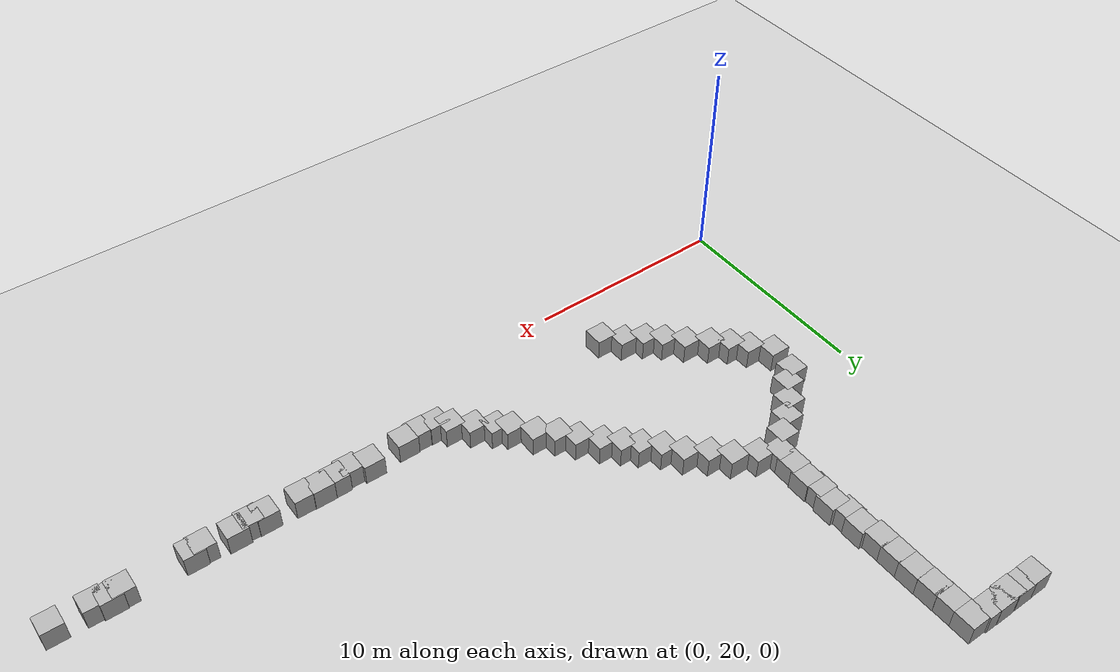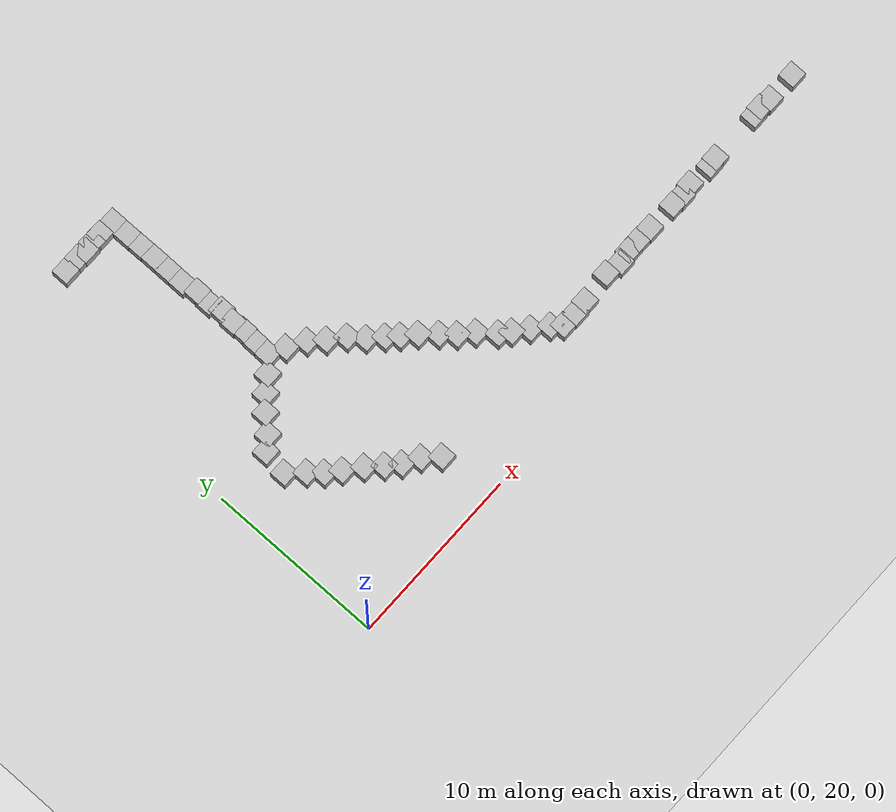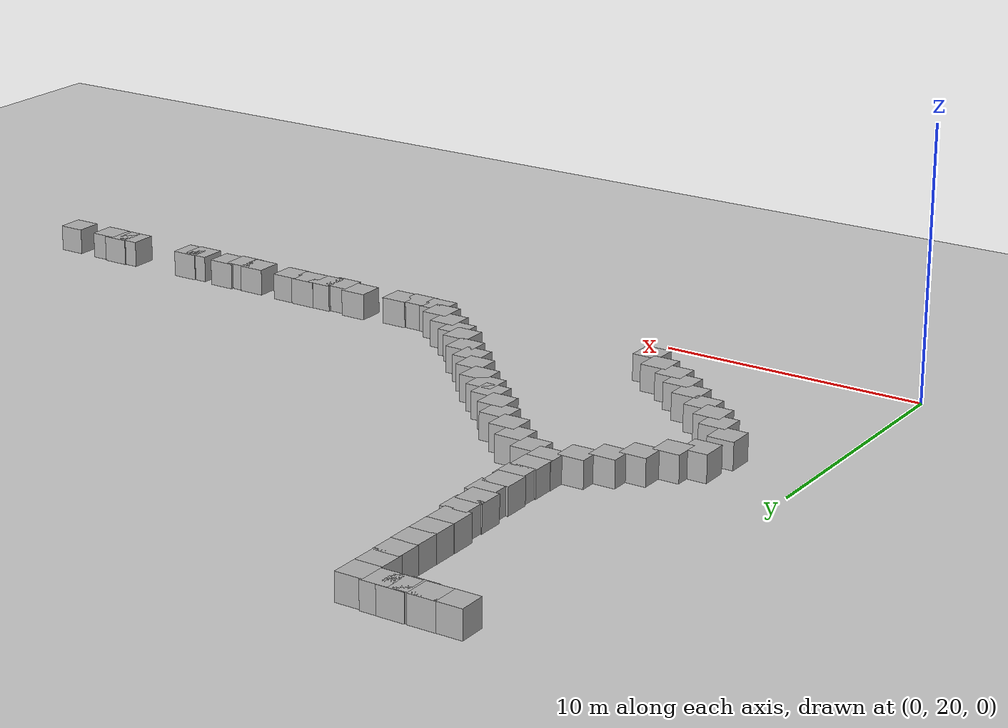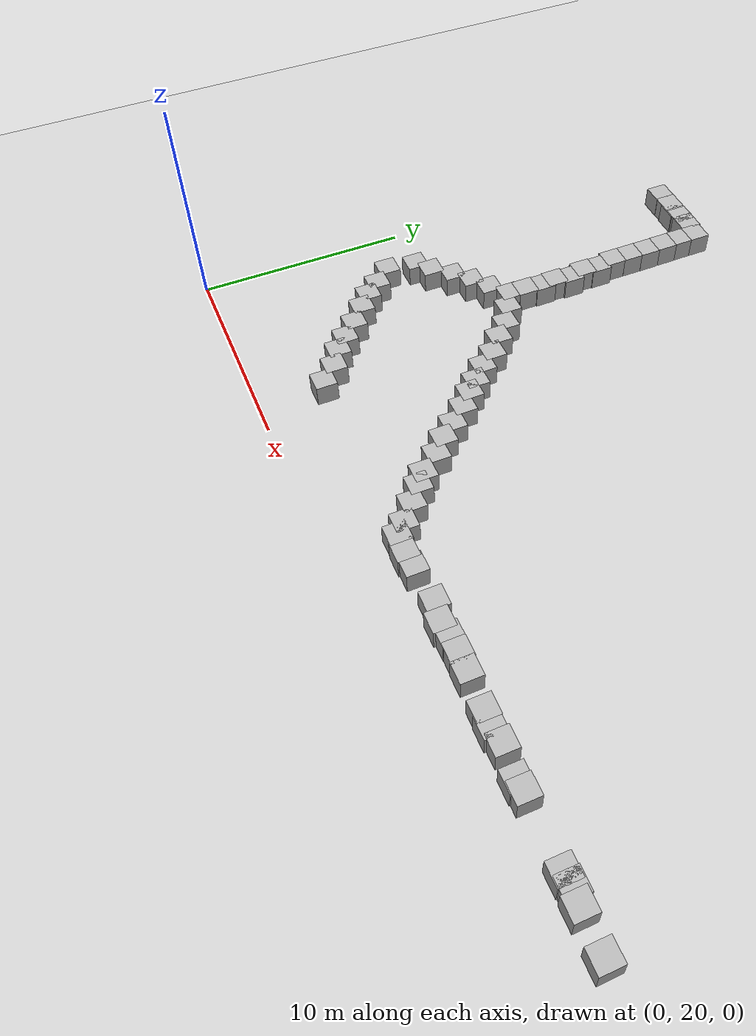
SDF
<sdf version="1.10">
 <world name="empty">
  <model name="ground_plane">
   <static>true</static>
   <link name="link">
    <collision name="collision">
     <geometry><plane><normal>0 0 1</normal><size>100 100</size></plane></geometry>
    </collision>
    <visual name="visual">
     <geometry><plane><normal>0 0 1</normal><size>100 100</size></plane></geometry>
     <material>
      <ambient>0.800000012 0.800000012 0.800000012 1</ambient>
      <diffuse>0.800000012 0.800000012 0.800000012 1</diffuse>
      <specular>0.800000012 0.800000012 0.800000012 1</specular>
     </material>
    </visual>
    <inertial>
     <mass>1</mass>
     <inertia><ixx>1</ixx><ixy>0</ixy><ixz>0</ixz><iyy>1</iyy><iyz>0</iyz><izz>1</izz></inertia>
    </inertial>
   </link>
  </model>
  <model name="box_7_102">
   <pose>6.9818220370863573 37.199644712680268 0.5 0 0 0</pose>
   <link name="box_link">
    <inertial>
     <inertia><ixx>0.16666</ixx><ixy>0</ixy><ixz>0</ixz><iyy>0.16666</iyy><iyz>0</iyz><izz>0.16666</izz></inertia>
     <mass>1</mass>
    </inertial>
    <collision name="box_collision"><geometry><box><size>1 1 1</size></box></geometry></collision>
    <visual name="box_visual">
     <geometry><box><size>1 1 1</size></box></geometry>
     <material>
      <ambient>0.300000012 0.300000012 0.300000012 1</ambient>
      <diffuse>0.699999988 0.699999988 0.699999988 1</diffuse>
      <specular>1 1 1 1</specular>
     </material>
    </visual>
   </link>
   <static>false</static>
  </model>
  <model name="box_7_103">
   <pose>7.0258562224809955 37.982386670514707 0.5 0 0 0</pose>
   <link name="box_link">
    <inertial>
     <inertia><ixx>0.16666</ixx><ixy>0</ixy><ixz>0</ixz><iyy>0.16666</iyy><iyz>0</iyz><izz>0.16666</izz></inertia>
     <mass>1</mass>
    </inertial>
    <collision name="box_collision"><geometry><box><size>1 1 1</size></box></geometry></collision>
    <visual name="box_visual">
     <geometry><box><size>1 1 1</size></box></geometry>
     <material>
      <ambient>0.300000012 0.300000012 0.300000012 1</ambient>
      <diffuse>0.699999988 0.699999988 0.699999988 1</diffuse>
      <specular>1 1 1 1</specular>
     </material>
    </visual>
   </link>
   <static>false</static>
  </model>
  <model name="box_7_104">
   <pose>6.8653520473228999 38.897348743136661 0.5 0 0 0</pose>
   <link name="box_link">
    <inertial>
     <inertia><ixx>0.16666</ixx><ixy>0</ixy><ixz>0</ixz><iyy>0.16666</iyy><iyz>0</iyz><izz>0.16666</izz></inertia>
     <mass>1</mass>
    </inertial>
    <collision name="box_collision"><geometry><box><size>1 1 1</size></box></geometry></collision>
    <visual name="box_visual">
     <geometry><box><size>1 1 1</size></box></geometry>
     <material>
      <ambient>0.300000012 0.300000012 0.300000012 1</ambient>
      <diffuse>0.699999988 0.699999988 0.699999988 1</diffuse>
      <specular>1 1 1 1</specular>
     </material>
    </visual>
   </link>
   <static>false</static>
  </model>
  <model name="box_7_105">
   <pose>6.86935141346226 39.82627662145569 0.5 0 0 0</pose>
   <link name="box_link">
    <inertial>
     <inertia><ixx>0.16666</ixx><ixy>0</ixy><ixz>0</ixz><iyy>0.16666</iyy><iyz>0</iyz><izz>0.16666</izz></inertia>
     <mass>1</mass>
    </inertial>
    <collision name="box_collision"><geometry><box><size>1 1 1</size></box></geometry></collision>
    <visual name="box_visual">
     <geometry><box><size>1 1 1</size></box></geometry>
     <material>
      <ambient>0.300000012 0.300000012 0.300000012 1</ambient>
      <diffuse>0.699999988 0.699999988 0.699999988 1</diffuse>
      <specular>1 1 1 1</specular>
     </material>
    </visual>
   </link>
   <static>false</static>
  </model>
  <model name="box_7_106">
   <pose>6.8737772864032767 40.789411978564651 0.5 0 0 0</pose>
   <link name="box_link">
    <inertial>
     <inertia><ixx>0.16666</ixx><ixy>0</ixy><ixz>0</ixz><iyy>0.16666</iyy><iyz>0</iyz><izz>0.16666</izz></inertia>
     <mass>1</mass>
    </inertial>
    <collision name="box_collision"><geometry><box><size>1 1 1</size></box></geometry></collision>
    <visual name="box_visual">
     <geometry><box><size>1 1 1</size></box></geometry>
     <material>
      <ambient>0.300000012 0.300000012 0.300000012 1</ambient>
      <diffuse>0.699999988 0.699999988 0.699999988 1</diffuse>
      <specular>1 1 1 1</specular>
     </material>
    </visual>
   </link>
   <static>false</static>
  </model>
  <model name="box_7_107">
   <pose>6.8592821568740963 41.770575013761601 0.5 0 0 0</pose>
   <link name="box_link">
    <inertial>
     <inertia><ixx>0.16666</ixx><ixy>0</ixy><ixz>0</ixz><iyy>0.16666</iyy><iyz>0</iyz><izz>0.16666</izz></inertia>
     <mass>1</mass>
    </inertial>
    <collision name="box_collision"><geometry><box><size>1 1 1</size></box></geometry></collision>
    <visual name="box_visual">
     <geometry><box><size>1 1 1</size></box></geometry>
     <material>
      <ambient>0.300000012 0.300000012 0.300000012 1</ambient>
      <diffuse>0.699999988 0.699999988 0.699999988 1</diffuse>
      <specular>1 1 1 1</specular>
     </material>
    </visual>
   </link>
   <static>false</static>
  </model>
  <model name="box_7_108">
   <pose>6.8459215419698474 42.642100578142269 0.5 0 0 0</pose>
   <link name="box_link">
    <inertial>
     <inertia><ixx>0.16666</ixx><ixy>0</ixy><ixz>0</ixz><iyy>0.16666</iyy><iyz>0</iyz><izz>0.16666</izz></inertia>
     <mass>1</mass>
    </inertial>
    <collision name="box_collision"><geometry><box><size>1 1 1</size></box></geometry></collision>
    <visual name="box_visual">
     <geometry><box><size>1 1 1</size></box></geometry>
     <material>
      <ambient>0.300000012 0.300000012 0.300000012 1</ambient>
      <diffuse>0.699999988 0.699999988 0.699999988 1</diffuse>
      <specular>1 1 1 1</specular>
     </material>
    </visual>
   </link>
   <static>false</static>
  </model>
  <model name="box_7_109">
   <pose>6.8482749237361107 43.633571200421294 0.5 0 0 0</pose>
   <link name="box_link">
    <inertial>
     <inertia><ixx>0.16666</ixx><ixy>0</ixy><ixz>0</ixz><iyy>0.16666</iyy><iyz>0</iyz><izz>0.16666</izz></inertia>
     <mass>1</mass>
    </inertial>
    <collision name="box_collision"><geometry><box><size>1 1 1</size></box></geometry></collision>
    <visual name="box_visual">
     <geometry><box><size>1 1 1</size></box></geometry>
     <material>
      <ambient>0.300000012 0.300000012 0.300000012 1</ambient>
      <diffuse>0.699999988 0.699999988 0.699999988 1</diffuse>
      <specular>1 1 1 1</specular>
     </material>
    </visual>
   </link>
   <static>false</static>
  </model>
  <model name="box_7_110">
   <pose>5.9314653542560443 43.694338676873521 0.5 0 0 0</pose>
   <link name="box_link">
    <inertial>
     <inertia><ixx>0.16666</ixx><ixy>0</ixy><ixz>0</ixz><iyy>0.16666</iyy><iyz>0</iyz><izz>0.16666</izz></inertia>
     <mass>1</mass>
    </inertial>
    <collision name="box_collision"><geometry><box><size>1 1 1</size></box></geometry></collision>
    <visual name="box_visual">
     <geometry><box><size>1 1 1</size></box></geometry>
     <material>
      <ambient>0.300000012 0.300000012 0.300000012 1</ambient>
      <diffuse>0.699999988 0.699999988 0.699999988 1</diffuse>
      <specular>1 1 1 1</specular>
     </material>
    </visual>
   </link>
   <static>false</static>
  </model>
  <model name="box_7_111">
   <pose>5.3382625848367748 43.703671115389561 0.5 0 0 0</pose>
   <link name="box_link">
    <inertial>
     <inertia><ixx>0.16666</ixx><ixy>0</ixy><ixz>0</ixz><iyy>0.16666</iyy><iyz>0</iyz><izz>0.16666</izz></inertia>
     <mass>1</mass>
    </inertial>
    <collision name="box_collision"><geometry><box><size>1 1 1</size></box></geometry></collision>
    <visual name="box_visual">
     <geometry><box><size>1 1 1</size></box></geometry>
     <material>
      <ambient>0.300000012 0.300000012 0.300000012 1</ambient>
      <diffuse>0.699999988 0.699999988 0.699999988 1</diffuse>
      <specular>1 1 1 1</specular>
     </material>
    </visual>
   </link>
   <static>false</static>
  </model>
  <model name="box_7_112">
   <pose>4.8001484517173534 43.658350162474797 0.5 0 0 0</pose>
   <link name="box_link">
    <inertial>
     <inertia><ixx>0.16666</ixx><ixy>0</ixy><ixz>0</ixz><iyy>0.16666</iyy><iyz>0</iyz><izz>0.16666</izz></inertia>
     <mass>1</mass>
    </inertial>
    <collision name="box_collision"><geometry><box><size>1 1 1</size></box></geometry></collision>
    <visual name="box_visual">
     <geometry><box><size>1 1 1</size></box></geometry>
     <material>
      <ambient>0.300000012 0.300000012 0.300000012 1</ambient>
      <diffuse>0.699999988 0.699999988 0.699999988 1</diffuse>
      <specular>1 1 1 1</specular>
     </material>
    </visual>
   </link>
   <static>false</static>
  </model>
  <model name="box_7_113">
   <pose>4.2617829197288817 43.693388386121555 0.5 0 0 0</pose>
   <link name="box_link">
    <inertial>
     <inertia><ixx>0.16666</ixx><ixy>0</ixy><ixz>0</ixz><iyy>0.16666</iyy><iyz>0</iyz><izz>0.16666</izz></inertia>
     <mass>1</mass>
    </inertial>
    <collision name="box_collision"><geometry><box><size>1 1 1</size></box></geometry></collision>
    <visual name="box_visual">
     <geometry><box><size>1 1 1</size></box></geometry>
     <material>
      <ambient>0.300000012 0.300000012 0.300000012 1</ambient>
      <diffuse>0.699999988 0.699999988 0.699999988 1</diffuse>
      <specular>1 1 1 1</specular>
     </material>
    </visual>
   </link>
   <static>false</static>
  </model>
  <model name="box_7_114">
   <pose>3.3459726615779872 43.683105230671245 0.5 0 0 0</pose>
   <link name="box_link">
    <inertial>
     <inertia><ixx>0.16666</ixx><ixy>0</ixy><ixz>0</ixz><iyy>0.16666</iyy><iyz>0</iyz><izz>0.16666</izz></inertia>
     <mass>1</mass>
    </inertial>
    <collision name="box_collision"><geometry><box><size>1 1 1</size></box></geometry></collision>
    <visual name="box_visual">
     <geometry><box><size>1 1 1</size></box></geometry>
     <material>
      <ambient>0.300000012 0.300000012 0.300000012 1</ambient>
      <diffuse>0.699999988 0.699999988 0.699999988 1</diffuse>
      <specular>1 1 1 1</specular>
     </material>
    </visual>
   </link>
   <static>false</static>
  </model>
  <model name="box_7_142">
   <pose>7.1430799126403732 36.422830880297852 0.5 0 0 0</pose>
   <link name="box_link">
    <inertial>
     <inertia><ixx>0.16666</ixx><ixy>0</ixy><ixz>0</ixz><iyy>0.16666</iyy><iyz>0</iyz><izz>0.16666</izz></inertia>
     <mass>1</mass>
    </inertial>
    <collision name="box_collision"><geometry><box><size>1 1 1</size></box></geometry></collision>
    <visual name="box_visual">
     <geometry><box><size>1 1 1</size></box></geometry>
     <material>
      <ambient>0.300000012 0.300000012 0.300000012 1</ambient>
      <diffuse>0.699999988 0.699999988 0.699999988 1</diffuse>
      <specular>1 1 1 1</specular>
     </material>
    </visual>
   </link>
   <static>false</static>
  </model>
  <model name="box_7_143">
   <pose>7.0575924337077289 35.599769989085608 0.5 0 0 0</pose>
   <link name="box_link">
    <inertial>
     <inertia><ixx>0.16666</ixx><ixy>0</ixy><ixz>0</ixz><iyy>0.16666</iyy><iyz>0</iyz><izz>0.16666</izz></inertia>
     <mass>1</mass>
    </inertial>
    <collision name="box_collision"><geometry><box><size>1 1 1</size></box></geometry></collision>
    <visual name="box_visual">
     <geometry><box><size>1 1 1</size></box></geometry>
     <material>
      <ambient>0.300000012 0.300000012 0.300000012 1</ambient>
      <diffuse>0.699999988 0.699999988 0.699999988 1</diffuse>
      <specular>1 1 1 1</specular>
     </material>
    </visual>
   </link>
   <static>false</static>
  </model>
  <model name="box_7_144">
   <pose>7.1079323328121804 34.89570712981088 0.5 0 0 0</pose>
   <link name="box_link">
    <inertial>
     <inertia><ixx>0.16666</ixx><ixy>0</ixy><ixz>0</ixz><iyy>0.16666</iyy><iyz>0</iyz><izz>0.16666</izz></inertia>
     <mass>1</mass>
    </inertial>
    <collision name="box_collision"><geometry><box><size>1 1 1</size></box></geometry></collision>
    <visual name="box_visual">
     <geometry><box><size>1 1 1</size></box></geometry>
     <material>
      <ambient>0.300000012 0.300000012 0.300000012 1</ambient>
      <diffuse>0.699999988 0.699999988 0.699999988 1</diffuse>
      <specular>1 1 1 1</specular>
     </material>
    </visual>
   </link>
   <static>false</static>
  </model>
  <model name="box_7_145">
   <pose>7.0589230159077907 34.009350927262261 0.5 0 0 0</pose>
   <link name="box_link">
    <inertial>
     <inertia><ixx>0.16666</ixx><ixy>0</ixy><ixz>0</ixz><iyy>0.16666</iyy><iyz>0</iyz><izz>0.16666</izz></inertia>
     <mass>1</mass>
    </inertial>
    <collision name="box_collision"><geometry><box><size>1 1 1</size></box></geometry></collision>
    <visual name="box_visual">
     <geometry><box><size>1 1 1</size></box></geometry>
     <material>
      <ambient>0.300000012 0.300000012 0.300000012 1</ambient>
      <diffuse>0.699999988 0.699999988 0.699999988 1</diffuse>
      <specular>1 1 1 1</specular>
     </material>
    </visual>
   </link>
   <static>false</static>
  </model>
  <model name="box_7_146">
   <pose>7.041293830358498 33.157881410882531 0.5 0 0 0</pose>
   <link name="box_link">
    <inertial>
     <inertia><ixx>0.16666</ixx><ixy>0</ixy><ixz>0</ixz><iyy>0.16666</iyy><iyz>0</iyz><izz>0.16666</izz></inertia>
     <mass>1</mass>
    </inertial>
    <collision name="box_collision"><geometry><box><size>1 1 1</size></box></geometry></collision>
    <visual name="box_visual">
     <geometry><box><size>1 1 1</size></box></geometry>
     <material>
      <ambient>0.300000012 0.300000012 0.300000012 1</ambient>
      <diffuse>0.699999988 0.699999988 0.699999988 1</diffuse>
      <specular>1 1 1 1</specular>
     </material>
    </visual>
   </link>
   <static>false</static>
  </model>
  <model name="box_7_147">
   <pose>6.232522869408732 32.466382546354467 0.5 0 0 0</pose>
   <link name="box_link">
    <inertial>
     <inertia><ixx>0.16666</ixx><ixy>0</ixy><ixz>0</ixz><iyy>0.16666</iyy><iyz>0</iyz><izz>0.16666</izz></inertia>
     <mass>1</mass>
    </inertial>
    <collision name="box_collision"><geometry><box><size>1 1 1</size></box></geometry></collision>
    <visual name="box_visual">
     <geometry><box><size>1 1 1</size></box></geometry>
     <material>
      <ambient>0.300000012 0.300000012 0.300000012 1</ambient>
      <diffuse>0.699999988 0.699999988 0.699999988 1</diffuse>
      <specular>1 1 1 1</specular>
     </material>
    </visual>
   </link>
   <static>false</static>
  </model>
  <model name="box_7_148">
   <pose>5.4175005750046612 31.870879970080821 0.5 0 0 0</pose>
   <link name="box_link">
    <inertial>
     <inertia><ixx>0.16666</ixx><ixy>0</ixy><ixz>0</ixz><iyy>0.16666</iyy><iyz>0</iyz><izz>0.16666</izz></inertia>
     <mass>1</mass>
    </inertial>
    <collision name="box_collision"><geometry><box><size>1 1 1</size></box></geometry></collision>
    <visual name="box_visual">
     <geometry><box><size>1 1 1</size></box></geometry>
     <material>
      <ambient>0.300000012 0.300000012 0.300000012 1</ambient>
      <diffuse>0.699999988 0.699999988 0.699999988 1</diffuse>
      <specular>1 1 1 1</specular>
     </material>
    </visual>
   </link>
   <static>false</static>
  </model>
  <model name="box_7_149">
   <pose>4.6719191300861151 31.209623610554463 0.5 0 0 0</pose>
   <link name="box_link">
    <inertial>
     <inertia><ixx>0.16666</ixx><ixy>0</ixy><ixz>0</ixz><iyy>0.16666</iyy><iyz>0</iyz><izz>0.16666</izz></inertia>
     <mass>1</mass>
    </inertial>
    <collision name="box_collision"><geometry><box><size>1 1 1</size></box></geometry></collision>
    <visual name="box_visual">
     <geometry><box><size>1 1 1</size></box></geometry>
     <material>
      <ambient>0.300000012 0.300000012 0.300000012 1</ambient>
      <diffuse>0.699999988 0.699999988 0.699999988 1</diffuse>
      <specular>1 1 1 1</specular>
     </material>
    </visual>
   </link>
   <static>false</static>
  </model>
  <model name="box_7_150">
   <pose>3.9265932435468214 30.372795439653377 0.5 0 0 0</pose>
   <link name="box_link">
    <inertial>
     <inertia><ixx>0.16666</ixx><ixy>0</ixy><ixz>0</ixz><iyy>0.16666</iyy><iyz>0</iyz><izz>0.16666</izz></inertia>
     <mass>1</mass>
    </inertial>
    <collision name="box_collision"><geometry><box><size>1 1 1</size></box></geometry></collision>
    <visual name="box_visual">
     <geometry><box><size>1 1 1</size></box></geometry>
     <material>
      <ambient>0.300000012 0.300000012 0.300000012 1</ambient>
      <diffuse>0.699999988 0.699999988 0.699999988 1</diffuse>
      <specular>1 1 1 1</specular>
     </material>
    </visual>
   </link>
   <static>false</static>
  </model>
  <model name="box_7_151">
   <pose>3.2076871176157669 29.846780123386971 0.5 0 0 0</pose>
   <link name="box_link">
    <inertial>
     <inertia><ixx>0.16666</ixx><ixy>0</ixy><ixz>0</ixz><iyy>0.16666</iyy><iyz>0</iyz><izz>0.16666</izz></inertia>
     <mass>1</mass>
    </inertial>
    <collision name="box_collision"><geometry><box><size>1 1 1</size></box></geometry></collision>
    <visual name="box_visual">
     <geometry><box><size>1 1 1</size></box></geometry>
     <material>
      <ambient>0.300000012 0.300000012 0.300000012 1</ambient>
      <diffuse>0.699999988 0.699999988 0.699999988 1</diffuse>
      <specular>1 1 1 1</specular>
     </material>
    </visual>
   </link>
   <static>false</static>
  </model>
  <model name="box_7_322">
   <pose>7.8634091695619475 32.697635826269043 0.5 0 0 0</pose>
   <link name="box_link">
    <inertial>
     <inertia><ixx>0.16666</ixx><ixy>0</ixy><ixz>0</ixz><iyy>0.16666</iyy><iyz>0</iyz><izz>0.16666</izz></inertia>
     <mass>1</mass>
    </inertial>
    <collision name="box_collision"><geometry><box><size>1 1 1</size></box></geometry></collision>
    <visual name="box_visual">
     <geometry><box><size>1 1 1</size></box></geometry>
     <material>
      <ambient>0.300000012 0.300000012 0.300000012 1</ambient>
      <diffuse>0.699999988 0.699999988 0.699999988 1</diffuse>
      <specular>1 1 1 1</specular>
     </material>
    </visual>
   </link>
   <static>false</static>
  </model>
  <model name="box_7_323">
   <pose>3.0104397831129965 28.43673371745475 0.5 0 0 0</pose>
   <link name="box_link">
    <inertial>
     <inertia><ixx>0.16666</ixx><ixy>0</ixy><ixz>0</ixz><iyy>0.16666</iyy><iyz>0</iyz><izz>0.16666</izz></inertia>
     <mass>1</mass>
    </inertial>
    <collision name="box_collision"><geometry><box><size>1 1 1</size></box></geometry></collision>
    <visual name="box_visual">
     <geometry><box><size>1 1 1</size></box></geometry>
     <material>
      <ambient>0.300000012 0.300000012 0.300000012 1</ambient>
      <diffuse>0.699999988 0.699999988 0.699999988 1</diffuse>
      <specular>1 1 1 1</specular>
     </material>
    </visual>
   </link>
   <static>false</static>
  </model>
  <model name="box_7_324">
   <pose>8.8322826660661704 32.13127522433323 0.5 0 0 0</pose>
   <link name="box_link">
    <inertial>
     <inertia><ixx>0.16666</ixx><ixy>0</ixy><ixz>0</ixz><iyy>0.16666</iyy><iyz>0</iyz><izz>0.16666</izz></inertia>
     <mass>1</mass>
    </inertial>
    <collision name="box_collision"><geometry><box><size>1 1 1</size></box></geometry></collision>
    <visual name="box_visual">
     <geometry><box><size>1 1 1</size></box></geometry>
     <material>
      <ambient>0.300000012 0.300000012 0.300000012 1</ambient>
      <diffuse>0.699999988 0.699999988 0.699999988 1</diffuse>
      <specular>1 1 1 1</specular>
     </material>
    </visual>
   </link>
   <static>false</static>
  </model>
  <model name="box_7_325">
   <pose>3.7841454071461218 27.611597728851415 0.5 0 0 0</pose>
   <link name="box_link">
    <inertial>
     <inertia><ixx>0.16666</ixx><ixy>0</ixy><ixz>0</ixz><iyy>0.16666</iyy><iyz>0</iyz><izz>0.16666</izz></inertia>
     <mass>1</mass>
    </inertial>
    <collision name="box_collision"><geometry><box><size>1 1 1</size></box></geometry></collision>
    <visual name="box_visual">
     <geometry><box><size>1 1 1</size></box></geometry>
     <material>
      <ambient>0.300000012 0.300000012 0.300000012 1</ambient>
      <diffuse>0.699999988 0.699999988 0.699999988 1</diffuse>
      <specular>1 1 1 1</specular>
     </material>
    </visual>
   </link>
   <static>false</static>
  </model>
  <model name="box_7_326">
   <pose>4.3696937019719577 26.921521338552303 0.5 0 0 0</pose>
   <link name="box_link">
    <inertial>
     <inertia><ixx>0.16666</ixx><ixy>0</ixy><ixz>0</ixz><iyy>0.16666</iyy><iyz>0</iyz><izz>0.16666</izz></inertia>
     <mass>1</mass>
    </inertial>
    <collision name="box_collision"><geometry><box><size>1 1 1</size></box></geometry></collision>
    <visual name="box_visual">
     <geometry><box><size>1 1 1</size></box></geometry>
     <material>
      <ambient>0.300000012 0.300000012 0.300000012 1</ambient>
      <diffuse>0.699999988 0.699999988 0.699999988 1</diffuse>
      <specular>1 1 1 1</specular>
     </material>
    </visual>
   </link>
   <static>false</static>
  </model>
  <model name="box_7_327">
   <pose>5.0661267542333395 26.330961878050644 0.5 0 0 0</pose>
   <link name="box_link">
    <inertial>
     <inertia><ixx>0.16666</ixx><ixy>0</ixy><ixz>0</ixz><iyy>0.16666</iyy><iyz>0</iyz><izz>0.16666</izz></inertia>
     <mass>1</mass>
    </inertial>
    <collision name="box_collision"><geometry><box><size>1 1 1</size></box></geometry></collision>
    <visual name="box_visual">
     <geometry><box><size>1 1 1</size></box></geometry>
     <material>
      <ambient>0.300000012 0.300000012 0.300000012 1</ambient>
      <diffuse>0.699999988 0.699999988 0.699999988 1</diffuse>
      <specular>1 1 1 1</specular>
     </material>
    </visual>
   </link>
   <static>false</static>
  </model>
  <model name="box_7_328">
   <pose>9.5315985497848317 31.430004296982435 0.5 0 0 0</pose>
   <link name="box_link">
    <inertial>
     <inertia><ixx>0.16666</ixx><ixy>0</ixy><ixz>0</ixz><iyy>0.16666</iyy><iyz>0</iyz><izz>0.16666</izz></inertia>
     <mass>1</mass>
    </inertial>
    <collision name="box_collision"><geometry><box><size>1 1 1</size></box></geometry></collision>
    <visual name="box_visual">
     <geometry><box><size>1 1 1</size></box></geometry>
     <material>
      <ambient>0.300000012 0.300000012 0.300000012 1</ambient>
      <diffuse>0.699999988 0.699999988 0.699999988 1</diffuse>
      <specular>1 1 1 1</specular>
     </material>
    </visual>
   </link>
   <static>false</static>
  </model>
  <model name="box_7_329">
   <pose>10.351807336041531 30.748789665037698 0.5 0 0 0</pose>
   <link name="box_link">
    <inertial>
     <inertia><ixx>0.16666</ixx><ixy>0</ixy><ixz>0</ixz><iyy>0.16666</iyy><iyz>0</iyz><izz>0.16666</izz></inertia>
     <mass>1</mass>
    </inertial>
    <collision name="box_collision"><geometry><box><size>1 1 1</size></box></geometry></collision>
    <visual name="box_visual">
     <geometry><box><size>1 1 1</size></box></geometry>
     <material>
      <ambient>0.300000012 0.300000012 0.300000012 1</ambient>
      <diffuse>0.699999988 0.699999988 0.699999988 1</diffuse>
      <specular>1 1 1 1</specular>
     </material>
    </visual>
   </link>
   <static>false</static>
  </model>
  <model name="box_7_330">
   <pose>10.937419450818922 29.976230345845973 0.5 0 0 0</pose>
   <link name="box_link">
    <inertial>
     <inertia><ixx>0.16666</ixx><ixy>0</ixy><ixz>0</ixz><iyy>0.16666</iyy><iyz>0</iyz><izz>0.16666</izz></inertia>
     <mass>1</mass>
    </inertial>
    <collision name="box_collision"><geometry><box><size>1 1 1</size></box></geometry></collision>
    <visual name="box_visual">
     <geometry><box><size>1 1 1</size></box></geometry>
     <material>
      <ambient>0.300000012 0.300000012 0.300000012 1</ambient>
      <diffuse>0.699999988 0.699999988 0.699999988 1</diffuse>
      <specular>1 1 1 1</specular>
     </material>
    </visual>
   </link>
   <static>false</static>
  </model>
  <model name="box_7_331">
   <pose>5.9312842758100608 25.625244668767884 0.5 0 0 0</pose>
   <link name="box_link">
    <inertial>
     <inertia><ixx>0.16666</ixx><ixy>0</ixy><ixz>0</ixz><iyy>0.16666</iyy><iyz>0</iyz><izz>0.16666</izz></inertia>
     <mass>1</mass>
    </inertial>
    <collision name="box_collision"><geometry><box><size>1 1 1</size></box></geometry></collision>
    <visual name="box_visual">
     <geometry><box><size>1 1 1</size></box></geometry>
     <material>
      <ambient>0.300000012 0.300000012 0.300000012 1</ambient>
      <diffuse>0.699999988 0.699999988 0.699999988 1</diffuse>
      <specular>1 1 1 1</specular>
     </material>
    </visual>
   </link>
   <static>false</static>
  </model>
  <model name="box_7_332">
   <pose>6.6720686647986618 24.906357256477978 0.5 0 0 0</pose>
   <link name="box_link">
    <inertial>
     <inertia><ixx>0.16666</ixx><ixy>0</ixy><ixz>0</ixz><iyy>0.16666</iyy><iyz>0</iyz><izz>0.16666</izz></inertia>
     <mass>1</mass>
    </inertial>
    <collision name="box_collision"><geometry><box><size>1 1 1</size></box></geometry></collision>
    <visual name="box_visual">
     <geometry><box><size>1 1 1</size></box></geometry>
     <material>
      <ambient>0.300000012 0.300000012 0.300000012 1</ambient>
      <diffuse>0.699999988 0.699999988 0.699999988 1</diffuse>
      <specular>1 1 1 1</specular>
     </material>
    </visual>
   </link>
   <static>false</static>
  </model>
  <model name="box_7_333">
   <pose>11.640327005567233 29.31426563402524 0.5 0 0 0</pose>
   <link name="box_link">
    <inertial>
     <inertia><ixx>0.16666</ixx><ixy>0</ixy><ixz>0</ixz><iyy>0.16666</iyy><iyz>0</iyz><izz>0.16666</izz></inertia>
     <mass>1</mass>
    </inertial>
    <collision name="box_collision"><geometry><box><size>1 1 1</size></box></geometry></collision>
    <visual name="box_visual">
     <geometry><box><size>1 1 1</size></box></geometry>
     <material>
      <ambient>0.300000012 0.300000012 0.300000012 1</ambient>
      <diffuse>0.699999988 0.699999988 0.699999988 1</diffuse>
      <specular>1 1 1 1</specular>
     </material>
    </visual>
   </link>
   <static>false</static>
  </model>
  <model name="box_7_334">
   <pose>7.3387246250354563 24.309594029894736 0.5 0 0 0</pose>
   <link name="box_link">
    <inertial>
     <inertia><ixx>0.16666</ixx><ixy>0</ixy><ixz>0</ixz><iyy>0.16666</iyy><iyz>0</iyz><izz>0.16666</izz></inertia>
     <mass>1</mass>
    </inertial>
    <collision name="box_collision"><geometry><box><size>1 1 1</size></box></geometry></collision>
    <visual name="box_visual">
     <geometry><box><size>1 1 1</size></box></geometry>
     <material>
      <ambient>0.300000012 0.300000012 0.300000012 1</ambient>
      <diffuse>0.699999988 0.699999988 0.699999988 1</diffuse>
      <specular>1 1 1 1</specular>
     </material>
    </visual>
   </link>
   <static>false</static>
  </model>
  <model name="box_7_335">
   <pose>12.191443479738249 28.774510209173126 0.5 0 0 0</pose>
   <link name="box_link">
    <inertial>
     <inertia><ixx>0.16666</ixx><ixy>0</ixy><ixz>0</ixz><iyy>0.16666</iyy><iyz>0</iyz><izz>0.16666</izz></inertia>
     <mass>1</mass>
    </inertial>
    <collision name="box_collision"><geometry><box><size>1 1 1</size></box></geometry></collision>
    <visual name="box_visual">
     <geometry><box><size>1 1 1</size></box></geometry>
     <material>
      <ambient>0.300000012 0.300000012 0.300000012 1</ambient>
      <diffuse>0.699999988 0.699999988 0.699999988 1</diffuse>
      <specular>1 1 1 1</specular>
     </material>
    </visual>
   </link>
   <static>false</static>
  </model>
  <model name="box_7_336">
   <pose>8.2059885501845784 23.803239778748932 0.5 0 0 0</pose>
   <link name="box_link">
    <inertial>
     <inertia><ixx>0.16666</ixx><ixy>0</ixy><ixz>0</ixz><iyy>0.16666</iyy><iyz>0</iyz><izz>0.16666</izz></inertia>
     <mass>1</mass>
    </inertial>
    <collision name="box_collision"><geometry><box><size>1 1 1</size></box></geometry></collision>
    <visual name="box_visual">
     <geometry><box><size>1 1 1</size></box></geometry>
     <material>
      <ambient>0.300000012 0.300000012 0.300000012 1</ambient>
      <diffuse>0.699999988 0.699999988 0.699999988 1</diffuse>
      <specular>1 1 1 1</specular>
     </material>
    </visual>
   </link>
   <static>false</static>
  </model>
  <model name="box_7_337">
   <pose>12.863452856674879 28.153710415817685 0.5 0 0 0</pose>
   <link name="box_link">
    <inertial>
     <inertia><ixx>0.16666</ixx><ixy>0</ixy><ixz>0</ixz><iyy>0.16666</iyy><iyz>0</iyz><izz>0.16666</izz></inertia>
     <mass>1</mass>
    </inertial>
    <collision name="box_collision"><geometry><box><size>1 1 1</size></box></geometry></collision>
    <visual name="box_visual">
     <geometry><box><size>1 1 1</size></box></geometry>
     <material>
      <ambient>0.300000012 0.300000012 0.300000012 1</ambient>
      <diffuse>0.699999988 0.699999988 0.699999988 1</diffuse>
      <specular>1 1 1 1</specular>
     </material>
    </visual>
   </link>
   <static>false</static>
  </model>
  <model name="box_7_338">
   <pose>8.9565635369882131 23.046994213167501 0.5 0 0 0</pose>
   <link name="box_link">
    <inertial>
     <inertia><ixx>0.16666</ixx><ixy>0</ixy><ixz>0</ixz><iyy>0.16666</iyy><iyz>0</iyz><izz>0.16666</izz></inertia>
     <mass>1</mass>
    </inertial>
    <collision name="box_collision"><geometry><box><size>1 1 1</size></box></geometry></collision>
    <visual name="box_visual">
     <geometry><box><size>1 1 1</size></box></geometry>
     <material>
      <ambient>0.300000012 0.300000012 0.300000012 1</ambient>
      <diffuse>0.699999988 0.699999988 0.699999988 1</diffuse>
      <specular>1 1 1 1</specular>
     </material>
    </visual>
   </link>
   <static>false</static>
  </model>
  <model name="box_7_339">
   <pose>13.57091130716028 27.363064576266233 0.5 0 0 0</pose>
   <link name="box_link">
    <inertial>
     <inertia><ixx>0.16666</ixx><ixy>0</ixy><ixz>0</ixz><iyy>0.16666</iyy><iyz>0</iyz><izz>0.16666</izz></inertia>
     <mass>1</mass>
    </inertial>
    <collision name="box_collision"><geometry><box><size>1 1 1</size></box></geometry></collision>
    <visual name="box_visual">
     <geometry><box><size>1 1 1</size></box></geometry>
     <material>
      <ambient>0.300000012 0.300000012 0.300000012 1</ambient>
      <diffuse>0.699999988 0.699999988 0.699999988 1</diffuse>
      <specular>1 1 1 1</specular>
     </material>
    </visual>
   </link>
   <static>false</static>
  </model>
  <model name="box_7_341">
   <pose>14.168014539096339 26.658978888677609 0.5 0 0 0</pose>
   <link name="box_link">
    <inertial>
     <inertia><ixx>0.16666</ixx><ixy>0</ixy><ixz>0</ixz><iyy>0.16666</iyy><iyz>0</iyz><izz>0.16666</izz></inertia>
     <mass>1</mass>
    </inertial>
    <collision name="box_collision"><geometry><box><size>1 1 1</size></box></geometry></collision>
    <visual name="box_visual">
     <geometry><box><size>1 1 1</size></box></geometry>
     <material>
      <ambient>0.300000012 0.300000012 0.300000012 1</ambient>
      <diffuse>0.699999988 0.699999988 0.699999988 1</diffuse>
      <specular>1 1 1 1</specular>
     </material>
    </visual>
   </link>
   <static>false</static>
  </model>
  <model name="box_7_343">
   <pose>14.881797830137003 26.035170635377806 0.5 0 0 0</pose>
   <link name="box_link">
    <inertial>
     <inertia><ixx>0.16666</ixx><ixy>0</ixy><ixz>0</ixz><iyy>0.16666</iyy><iyz>0</iyz><izz>0.16666</izz></inertia>
     <mass>1</mass>
    </inertial>
    <collision name="box_collision"><geometry><box><size>1 1 1</size></box></geometry></collision>
    <visual name="box_visual">
     <geometry><box><size>1 1 1</size></box></geometry>
     <material>
      <ambient>0.300000012 0.300000012 0.300000012 1</ambient>
      <diffuse>0.699999988 0.699999988 0.699999988 1</diffuse>
      <specular>1 1 1 1</specular>
     </material>
    </visual>
   </link>
   <static>false</static>
  </model>
  <model name="box_7_345">
   <pose>15.598386594516176 25.133049948071612 0.5 0 0 0</pose>
   <link name="box_link">
    <inertial>
     <inertia><ixx>0.16666</ixx><ixy>0</ixy><ixz>0</ixz><iyy>0.16666</iyy><iyz>0</iyz><izz>0.16666</izz></inertia>
     <mass>1</mass>
    </inertial>
    <collision name="box_collision"><geometry><box><size>1 1 1</size></box></geometry></collision>
    <visual name="box_visual">
     <geometry><box><size>1 1 1</size></box></geometry>
     <material>
      <ambient>0.300000012 0.300000012 0.300000012 1</ambient>
      <diffuse>0.699999988 0.699999988 0.699999988 1</diffuse>
      <specular>1 1 1 1</specular>
     </material>
    </visual>
   </link>
   <static>false</static>
  </model>
  <model name="box_7_347">
   <pose>16.1207835077441 24.699095329665735 0.5 0 0 0</pose>
   <link name="box_link">
    <inertial>
     <inertia><ixx>0.16666</ixx><ixy>0</ixy><ixz>0</ixz><iyy>0.16666</iyy><iyz>0</iyz><izz>0.16666</izz></inertia>
     <mass>1</mass>
    </inertial>
    <collision name="box_collision"><geometry><box><size>1 1 1</size></box></geometry></collision>
    <visual name="box_visual">
     <geometry><box><size>1 1 1</size></box></geometry>
     <material>
      <ambient>0.300000012 0.300000012 0.300000012 1</ambient>
      <diffuse>0.699999988 0.699999988 0.699999988 1</diffuse>
      <specular>1 1 1 1</specular>
     </material>
    </visual>
   </link>
   <static>false</static>
  </model>
  <model name="box_7_352">
   <pose>35.675560818157223 22.910224802981247 0.5 0 0 0</pose>
   <link name="box_link">
    <inertial>
     <inertia><ixx>0.16666</ixx><ixy>0</ixy><ixz>0</ixz><iyy>0.16666</iyy><iyz>0</iyz><izz>0.16666</izz></inertia>
     <mass>1</mass>
    </inertial>
    <collision name="box_collision"><geometry><box><size>1 1 1</size></box></geometry></collision>
    <visual name="box_visual">
     <geometry><box><size>1 1 1</size></box></geometry>
     <material>
      <ambient>0.300000012 0.300000012 0.300000012 1</ambient>
      <diffuse>0.699999988 0.699999988 0.699999988 1</diffuse>
      <specular>1 1 1 1</specular>
     </material>
    </visual>
   </link>
   <static>false</static>
  </model>
  <model name="box_7_354">
   <pose>33.978826550971903 22.932844109336084 0.5 0 0 0</pose>
   <link name="box_link">
    <inertial>
     <inertia><ixx>0.16666</ixx><ixy>0</ixy><ixz>0</ixz><iyy>0.16666</iyy><iyz>0</iyz><izz>0.16666</izz></inertia>
     <mass>1</mass>
    </inertial>
    <collision name="box_collision"><geometry><box><size>1 1 1</size></box></geometry></collision>
    <visual name="box_visual">
     <geometry><box><size>1 1 1</size></box></geometry>
     <material>
      <ambient>0.300000012 0.300000012 0.300000012 1</ambient>
      <diffuse>0.699999988 0.699999988 0.699999988 1</diffuse>
      <specular>1 1 1 1</specular>
     </material>
    </visual>
   </link>
   <static>false</static>
  </model>
  <model name="box_7_355">
   <pose>33.307783389139232 23.00556890330294 0.5 0 0 0</pose>
   <link name="box_link">
    <inertial>
     <inertia><ixx>0.16666</ixx><ixy>0</ixy><ixz>0</ixz><iyy>0.16666</iyy><iyz>0</iyz><izz>0.16666</izz></inertia>
     <mass>1</mass>
    </inertial>
    <collision name="box_collision"><geometry><box><size>1 1 1</size></box></geometry></collision>
    <visual name="box_visual">
     <geometry><box><size>1 1 1</size></box></geometry>
     <material>
      <ambient>0.300000012 0.300000012 0.300000012 1</ambient>
      <diffuse>0.699999988 0.699999988 0.699999988 1</diffuse>
      <specular>1 1 1 1</specular>
     </material>
    </visual>
   </link>
   <static>false</static>
  </model>
  <model name="box_7_356">
   <pose>32.793009457286082 22.960314226442968 0.5 0 0 0</pose>
   <link name="box_link">
    <inertial>
     <inertia><ixx>0.16666</ixx><ixy>0</ixy><ixz>0</ixz><iyy>0.16666</iyy><iyz>0</iyz><izz>0.16666</izz></inertia>
     <mass>1</mass>
    </inertial>
    <collision name="box_collision"><geometry><box><size>1 1 1</size></box></geometry></collision>
    <visual name="box_visual">
     <geometry><box><size>1 1 1</size></box></geometry>
     <material>
      <ambient>0.300000012 0.300000012 0.300000012 1</ambient>
      <diffuse>0.699999988 0.699999988 0.699999988 1</diffuse>
      <specular>1 1 1 1</specular>
     </material>
    </visual>
   </link>
   <static>false</static>
  </model>
  <model name="box_7_360">
   <pose>29.794873044011645 22.960320003624652 0.5 0 0 0</pose>
   <link name="box_link">
    <inertial>
     <inertia><ixx>0.16666</ixx><ixy>0</ixy><ixz>0</ixz><iyy>0.16666</iyy><iyz>0</iyz><izz>0.16666</izz></inertia>
     <mass>1</mass>
    </inertial>
    <collision name="box_collision"><geometry><box><size>1 1 1</size></box></geometry></collision>
    <visual name="box_visual">
     <geometry><box><size>1 1 1</size></box></geometry>
     <material>
      <ambient>0.300000012 0.300000012 0.300000012 1</ambient>
      <diffuse>0.699999988 0.699999988 0.699999988 1</diffuse>
      <specular>1 1 1 1</specular>
     </material>
    </visual>
   </link>
   <static>false</static>
  </model>
  <model name="box_7_362">
   <pose>29.319698901835395 22.915063093939658 0.5 0 0 0</pose>
   <link name="box_link">
    <inertial>
     <inertia><ixx>0.16666</ixx><ixy>0</ixy><ixz>0</ixz><iyy>0.16666</iyy><iyz>0</iyz><izz>0.16666</izz></inertia>
     <mass>1</mass>
    </inertial>
    <collision name="box_collision"><geometry><box><size>1 1 1</size></box></geometry></collision>
    <visual name="box_visual">
     <geometry><box><size>1 1 1</size></box></geometry>
     <material>
      <ambient>0.300000012 0.300000012 0.300000012 1</ambient>
      <diffuse>0.699999988 0.699999988 0.699999988 1</diffuse>
      <specular>1 1 1 1</specular>
     </material>
    </visual>
   </link>
   <static>false</static>
  </model>
  <model name="box_7_363">
   <pose>27.920540836472313 23.024137772416207 0.5 0 0 0</pose>
   <link name="box_link">
    <inertial>
     <inertia><ixx>0.16666</ixx><ixy>0</ixy><ixz>0</ixz><iyy>0.16666</iyy><iyz>0</iyz><izz>0.16666</izz></inertia>
     <mass>1</mass>
    </inertial>
    <collision name="box_collision"><geometry><box><size>1 1 1</size></box></geometry></collision>
    <visual name="box_visual">
     <geometry><box><size>1 1 1</size></box></geometry>
     <material>
      <ambient>0.300000012 0.300000012 0.300000012 1</ambient>
      <diffuse>0.699999988 0.699999988 0.699999988 1</diffuse>
      <specular>1 1 1 1</specular>
     </material>
    </visual>
   </link>
   <static>false</static>
  </model>
  <model name="box_7_364">
   <pose>27.181406606446863 22.932035516835263 0.5 0 0 0</pose>
   <link name="box_link">
    <inertial>
     <inertia><ixx>0.16666</ixx><ixy>0</ixy><ixz>0</ixz><iyy>0.16666</iyy><iyz>0</iyz><izz>0.16666</izz></inertia>
     <mass>1</mass>
    </inertial>
    <collision name="box_collision"><geometry><box><size>1 1 1</size></box></geometry></collision>
    <visual name="box_visual">
     <geometry><box><size>1 1 1</size></box></geometry>
     <material>
      <ambient>0.300000012 0.300000012 0.300000012 1</ambient>
      <diffuse>0.699999988 0.699999988 0.699999988 1</diffuse>
      <specular>1 1 1 1</specular>
     </material>
    </visual>
   </link>
   <static>false</static>
  </model>
  <model name="box_7_365">
   <pose>26.506867346376573 22.967591086502818 0.5 0 0 0</pose>
   <link name="box_link">
    <inertial>
     <inertia><ixx>0.16666</ixx><ixy>0</ixy><ixz>0</ixz><iyy>0.16666</iyy><iyz>0</iyz><izz>0.16666</izz></inertia>
     <mass>1</mass>
    </inertial>
    <collision name="box_collision"><geometry><box><size>1 1 1</size></box></geometry></collision>
    <visual name="box_visual">
     <geometry><box><size>1 1 1</size></box></geometry>
     <material>
      <ambient>0.300000012 0.300000012 0.300000012 1</ambient>
      <diffuse>0.699999988 0.699999988 0.699999988 1</diffuse>
      <specular>1 1 1 1</specular>
     </material>
    </visual>
   </link>
   <static>false</static>
  </model>
  <model name="box_7_367">
   <pose>24.849670474778527 23.036238182603707 0.5 0 0 0</pose>
   <link name="box_link">
    <inertial>
     <inertia><ixx>0.16666</ixx><ixy>0</ixy><ixz>0</ixz><iyy>0.16666</iyy><iyz>0</iyz><izz>0.16666</izz></inertia>
     <mass>1</mass>
    </inertial>
    <collision name="box_collision"><geometry><box><size>1 1 1</size></box></geometry></collision>
    <visual name="box_visual">
     <geometry><box><size>1 1 1</size></box></geometry>
     <material>
      <ambient>0.300000012 0.300000012 0.300000012 1</ambient>
      <diffuse>0.699999988 0.699999988 0.699999988 1</diffuse>
      <specular>1 1 1 1</specular>
     </material>
    </visual>
   </link>
   <static>false</static>
  </model>
  <model name="box_7_368">
   <pose>23.979017960000505 23.064506226426644 0.5 0 0 0</pose>
   <link name="box_link">
    <inertial>
     <inertia><ixx>0.16666</ixx><ixy>0</ixy><ixz>0</ixz><iyy>0.16666</iyy><iyz>0</iyz><izz>0.16666</izz></inertia>
     <mass>1</mass>
    </inertial>
    <collision name="box_collision"><geometry><box><size>1 1 1</size></box></geometry></collision>
    <visual name="box_visual">
     <geometry><box><size>1 1 1</size></box></geometry>
     <material>
      <ambient>0.300000012 0.300000012 0.300000012 1</ambient>
      <diffuse>0.699999988 0.699999988 0.699999988 1</diffuse>
      <specular>1 1 1 1</specular>
     </material>
    </visual>
   </link>
   <static>false</static>
  </model>
  <model name="box_7_369">
   <pose>23.227089286580775 23.053202753395233 0.5 0 0 0</pose>
   <link name="box_link">
    <inertial>
     <inertia><ixx>0.16666</ixx><ixy>0</ixy><ixz>0</ixz><iyy>0.16666</iyy><iyz>0</iyz><izz>0.16666</izz></inertia>
     <mass>1</mass>
    </inertial>
    <collision name="box_collision"><geometry><box><size>1 1 1</size></box></geometry></collision>
    <visual name="box_visual">
     <geometry><box><size>1 1 1</size></box></geometry>
     <material>
      <ambient>0.300000012 0.300000012 0.300000012 1</ambient>
      <diffuse>0.699999988 0.699999988 0.699999988 1</diffuse>
      <specular>1 1 1 1</specular>
     </material>
    </visual>
   </link>
   <static>false</static>
  </model>
  <model name="box_7_370">
   <pose>22.520310303796858 22.961938116200685 0.5 0 0 0</pose>
   <link name="box_link">
    <inertial>
     <inertia><ixx>0.16666</ixx><ixy>0</ixy><ixz>0</ixz><iyy>0.16666</iyy><iyz>0</iyz><izz>0.16666</izz></inertia>
     <mass>1</mass>
    </inertial>
    <collision name="box_collision"><geometry><box><size>1 1 1</size></box></geometry></collision>
    <visual name="box_visual">
     <geometry><box><size>1 1 1</size></box></geometry>
     <material>
      <ambient>0.300000012 0.300000012 0.300000012 1</ambient>
      <diffuse>0.699999988 0.699999988 0.699999988 1</diffuse>
      <specular>1 1 1 1</specular>
     </material>
    </visual>
   </link>
   <static>false</static>
  </model>
  <model name="box_7_371">
   <pose>21.570582729562233 23.121042538702309 0.5 0 0 0</pose>
   <link name="box_link">
    <inertial>
     <inertia><ixx>0.16666</ixx><ixy>0</ixy><ixz>0</ixz><iyy>0.16666</iyy><iyz>0</iyz><izz>0.16666</izz></inertia>
     <mass>1</mass>
    </inertial>
    <collision name="box_collision"><geometry><box><size>1 1 1</size></box></geometry></collision>
    <visual name="box_visual">
     <geometry><box><size>1 1 1</size></box></geometry>
     <material>
      <ambient>0.300000012 0.300000012 0.300000012 1</ambient>
      <diffuse>0.699999988 0.699999988 0.699999988 1</diffuse>
      <specular>1 1 1 1</specular>
     </material>
    </visual>
   </link>
   <static>false</static>
  </model>
  <model name="box_7_373">
   <pose>16.873908073774601 24.099955471323234 0.5 0 0 0</pose>
   <link name="box_link">
    <inertial>
     <inertia><ixx>0.16666</ixx><ixy>0</ixy><ixz>0</ixz><iyy>0.16666</iyy><iyz>0</iyz><izz>0.16666</izz></inertia>
     <mass>1</mass>
    </inertial>
    <collision name="box_collision"><geometry><box><size>1 1 1</size></box></geometry></collision>
    <visual name="box_visual">
     <geometry><box><size>1 1 1</size></box></geometry>
     <material>
      <ambient>0.300000012 0.300000012 0.300000012 1</ambient>
      <diffuse>0.699999988 0.699999988 0.699999988 1</diffuse>
      <specular>1 1 1 1</specular>
     </material>
    </visual>
   </link>
   <static>false</static>
  </model>
  <model name="box_7_374">
   <pose>17.662331487588638 23.434862440084437 0.5 0 0 0</pose>
   <link name="box_link">
    <inertial>
     <inertia><ixx>0.16666</ixx><ixy>0</ixy><ixz>0</ixz><iyy>0.16666</iyy><iyz>0</iyz><izz>0.16666</izz></inertia>
     <mass>1</mass>
    </inertial>
    <collision name="box_collision"><geometry><box><size>1 1 1</size></box></geometry></collision>
    <visual name="box_visual">
     <geometry><box><size>1 1 1</size></box></geometry>
     <material>
      <ambient>0.300000012 0.300000012 0.300000012 1</ambient>
      <diffuse>0.699999988 0.699999988 0.699999988 1</diffuse>
      <specular>1 1 1 1</specular>
     </material>
    </visual>
   </link>
   <static>false</static>
  </model>
  <model name="box_7_375">
   <pose>18.138845564060617 22.962740997215604 0.5 0 0 0</pose>
   <link name="box_link">
    <inertial>
     <inertia><ixx>0.16666</ixx><ixy>0</ixy><ixz>0</ixz><iyy>0.16666</iyy><iyz>0</iyz><izz>0.16666</izz></inertia>
     <mass>1</mass>
    </inertial>
    <collision name="box_collision"><geometry><box><size>1 1 1</size></box></geometry></collision>
    <visual name="box_visual">
     <geometry><box><size>1 1 1</size></box></geometry>
     <material>
      <ambient>0.300000012 0.300000012 0.300000012 1</ambient>
      <diffuse>0.699999988 0.699999988 0.699999988 1</diffuse>
      <specular>1 1 1 1</specular>
     </material>
    </visual>
   </link>
   <static>false</static>
  </model>
  <model name="box_7_376">
   <pose>19.789702409269385 22.979704020660407 0.5 0 0 0</pose>
   <link name="box_link">
    <inertial>
     <inertia><ixx>0.16666</ixx><ixy>0</ixy><ixz>0</ixz><iyy>0.16666</iyy><iyz>0</iyz><izz>0.16666</izz></inertia>
     <mass>1</mass>
    </inertial>
    <collision name="box_collision"><geometry><box><size>1 1 1</size></box></geometry></collision>
    <visual name="box_visual">
     <geometry><box><size>1 1 1</size></box></geometry>
     <material>
      <ambient>0.300000012 0.300000012 0.300000012 1</ambient>
      <diffuse>0.699999988 0.699999988 0.699999988 1</diffuse>
      <specular>1 1 1 1</specular>
     </material>
    </visual>
   </link>
   <static>false</static>
  </model>
  <model name="box_7_377">
   <pose>19.00874890415594 22.928006209666204 0.5 0 0 0</pose>
   <link name="box_link">
    <inertial>
     <inertia><ixx>0.16666</ixx><ixy>0</ixy><ixz>0</ixz><iyy>0.16666</iyy><iyz>0</iyz><izz>0.16666</izz></inertia>
     <mass>1</mass>
    </inertial>
    <collision name="box_collision"><geometry><box><size>1 1 1</size></box></geometry></collision>
    <visual name="box_visual">
     <geometry><box><size>1 1 1</size></box></geometry>
     <material>
      <ambient>0.300000012 0.300000012 0.300000012 1</ambient>
      <diffuse>0.699999988 0.699999988 0.699999988 1</diffuse>
      <specular>1 1 1 1</specular>
     </material>
    </visual>
   </link>
   <static>false</static>
  </model>
 </world>
</sdf>
